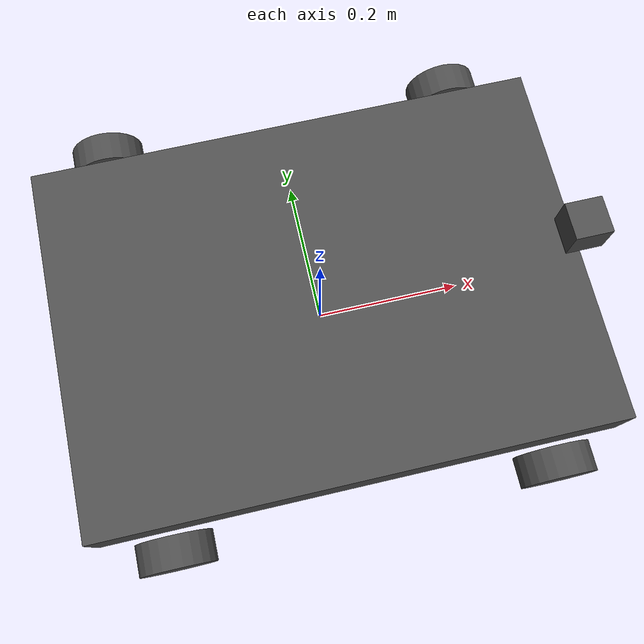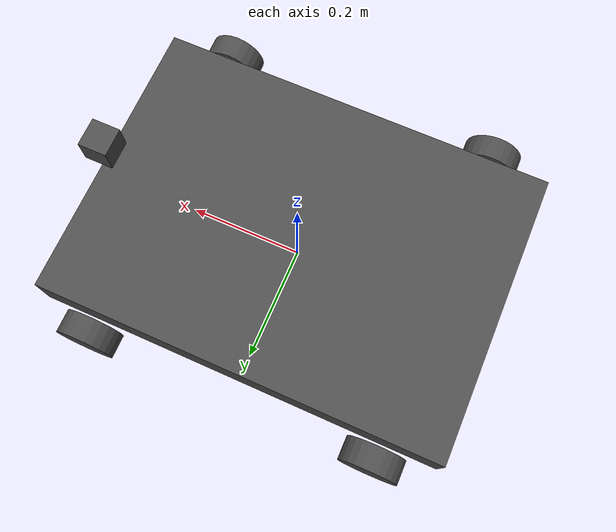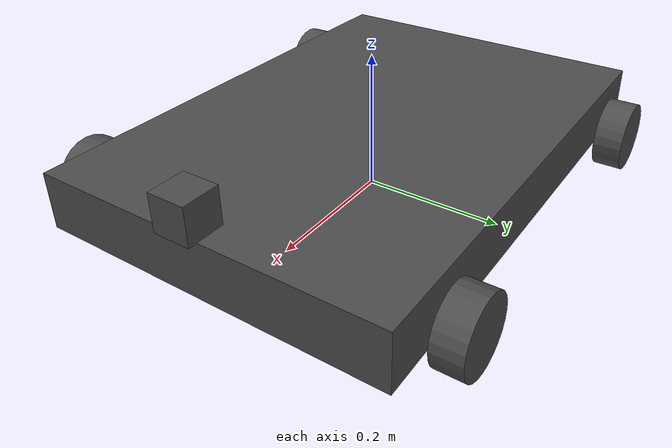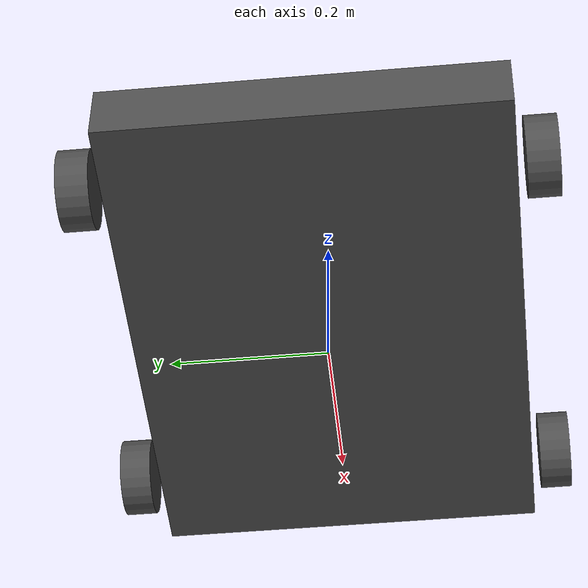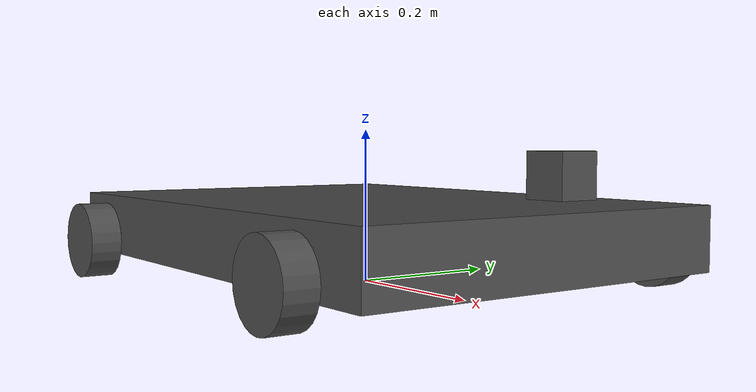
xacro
<?xml version="1.0"?>
<robot xmlns:xacro="http://www.ros.org/wiki/xacro" name="simple_base">

  <material name="grey"><color rgba="0.3 0.3 0.3 1"/></material>

  <link name="base_footprint"/>
  <joint name="base_footprint_joint" type="fixed">
    <parent link="base_footprint"/>
    <child link="base_link"/>
    <origin xyz="0 0 0.07" rpy="0 0 0"/>
  </joint>

  <link name="base_link">
    <visual>
      <geometry><box size="0.7 0.5 0.08"/></geometry> <material name="grey"/>
    </visual>
    <collision>
      <geometry><box size="0.7 0.5 0.08"/></geometry>
    </collision>
    <inertial>
      <mass value="80.0"/>
      <origin xyz="0 0 -0.1" rpy="0 0 0"/>
      <inertia ixx="3.0" ixy="0" ixz="0" iyy="4.0" iyz="0" izz="5.0"/>
    </inertial>
  </link>

  <xacro:macro name="wheel" params="prefix x_reflect y_reflect">
    <link name="${prefix}_wheel">
      <visual>
        <geometry><cylinder radius="0.05" length="0.04"/></geometry>
        <material name="grey"/>
      </visual>
      <collision>
        <geometry><cylinder radius="0.05" length="0.04"/></geometry>
      </collision>
      <inertial>
        <mass value="2.0"/>
        <inertia ixx="0.002" ixy="0" ixz="0" iyy="0.002" iyz="0" izz="0.002"/>
      </inertial>
    </link>

    <joint name="${prefix}_wheel_joint" type="continuous">
      <parent link="base_link"/>
      <child link="${prefix}_wheel"/>
      <origin xyz="${x_reflect*0.25} ${y_reflect*0.28} -0.02" rpy="-1.5708 0 0"/>
      <axis xyz="0 0 1"/>
    </joint>
  </xacro:macro>

  <xacro:wheel prefix="fl" x_reflect="1"  y_reflect="1" />
  <xacro:wheel prefix="fr" x_reflect="1"  y_reflect="-1" />
  <xacro:wheel prefix="rl" x_reflect="-1" y_reflect="1" />
  <xacro:wheel prefix="rr" x_reflect="-1" y_reflect="-1" />

  <link name="base_camera_link">
    <visual>
      <geometry><box size="0.05 0.05 0.05"/></geometry>
      <material name="grey"/>
    </visual>
  </link>

  <joint name="base_camera_joint" type="fixed">
    <parent link="base_link"/>
    <child link="base_camera_link"/>
    <origin xyz="0.35 0 0.08" rpy="0 0 0"/> </joint>

  <gazebo reference="base_camera_link">
    <sensor name="base_camera" type="camera">
      <camera>
        <horizontal_fov>1.089</horizontal_fov>
        <image>
          <width>640</width>
          <height>480</height>
          <format>R8G8B8</format>
        </image>
        <clip>
          <near>0.05</near>
          <far>8.0</far>
        </clip>
      </camera>
      <always_on>1</always_on>
      <update_rate>30</update_rate>
      <visualize>true</visualize> <topic>/base_camera/image_raw</topic> <gz_frame_id>base_camera_link</gz_frame_id>
    </sensor>
  </gazebo>
  <gazebo>
    <plugin filename="gz-sim-diff-drive-system" name="gz::sim::systems::DiffDrive">
      <left_joint>fl_wheel_joint</left_joint>
      <left_joint>rl_wheel_joint</left_joint>
      <right_joint>fr_wheel_joint</right_joint>
      <right_joint>rr_wheel_joint</right_joint>
      <wheel_separation>0.56</wheel_separation>
      <wheel_diameter>0.1</wheel_diameter> <max_wheel_torque>2000</max_wheel_torque>
      <max_linear_acceleration>0.5</max_linear_acceleration>
      <topic>/model/mobile_panda/cmd_vel</topic>
      <odom_topic>/model/mobile_panda/odometry</odom_topic>
      <frame_id>odom</frame_id>
      <child_frame_id>base_footprint</child_frame_id>
    </plugin>
  </gazebo>
</robot>
